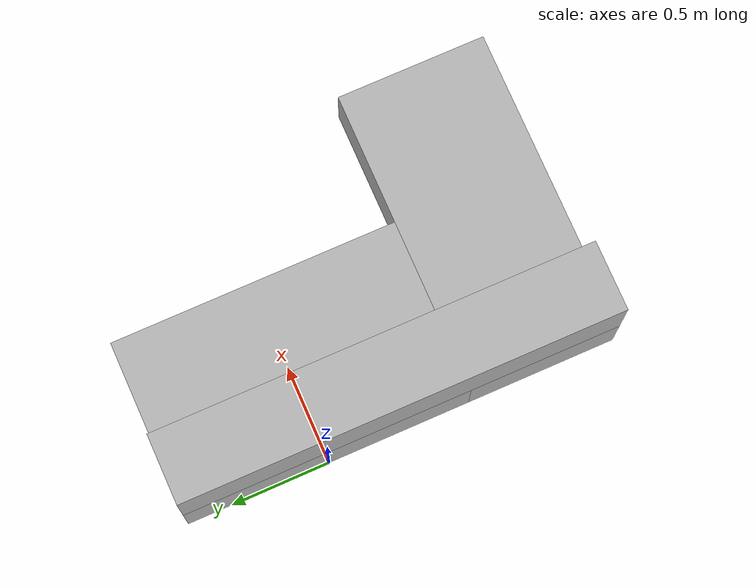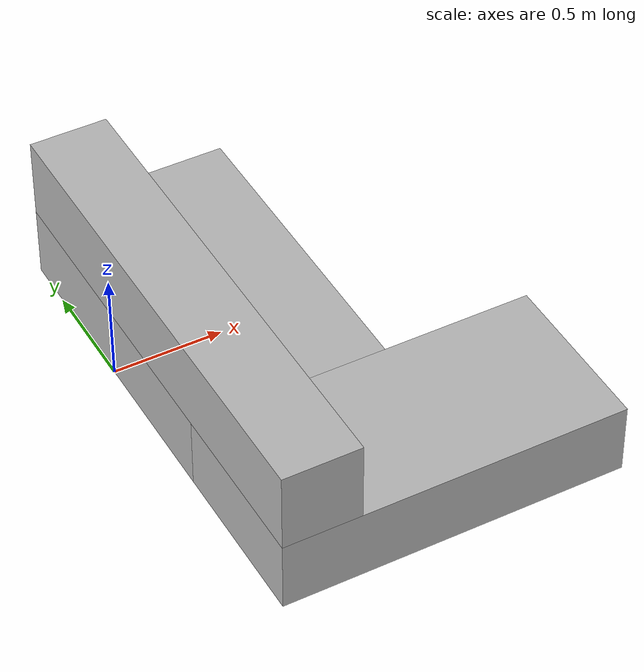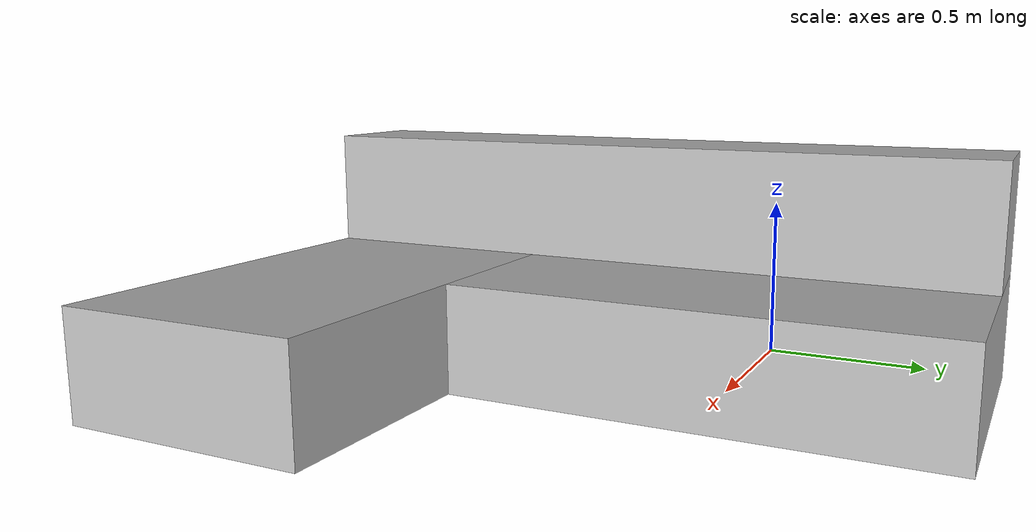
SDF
<?xml version="1.0"?>
<sdf version="1.6">
  <model name="rwc2017/sofa">
    <link name="1_link">
      <collision name="1_col">
        <geometry>
          <box>
            <size>0.88 1.45 0.33</size>
          </box>
        </geometry>
      </collision>
      <visual name="1_vis">
        <geometry>
          <box>
            <size>0.88 1.45 0.33</size>
          </box>
        </geometry>
      </visual>
      <pose>0.44 0.0 0.165 0 0 0</pose>
    </link>
    <link name="2_link">
      <collision name="2_col">
        <geometry>
          <box>
            <size>1.55 0.76 0.33</size>
          </box>
        </geometry>
      </collision>
      <visual name="2_vis">
        <geometry>
          <box>
            <size>1.55 0.76 0.33</size>
          </box>
        </geometry>
      </visual>
      <pose>0.775 -1.105 0.165 0 0 0</pose>
    </link>
    <link name="3_link">
      <collision name="3_col">
        <geometry>
          <box>
            <size>0.35 2.21 0.37</size>
          </box>
        </geometry>
      </collision>
      <visual name="3_vis">
        <geometry>
          <box>
            <size>0.35 2.21 0.37</size>
          </box>
        </geometry>
      </visual>
      <pose>0.175 -0.38 0.515 0 0 0</pose>
    </link>
    <link name="in_front_of">
      <virtual_volume name="in_front_of_vv">
        <geometry>
          <box>
            <size>1.5 2.7 0.01</size>
          </box>
        </geometry>
        <pose>1.25 -0.35 0.005 0 0 0</pose>
      </virtual_volume>
    </link>
    <static>true</static>
  </model>
</sdf>
